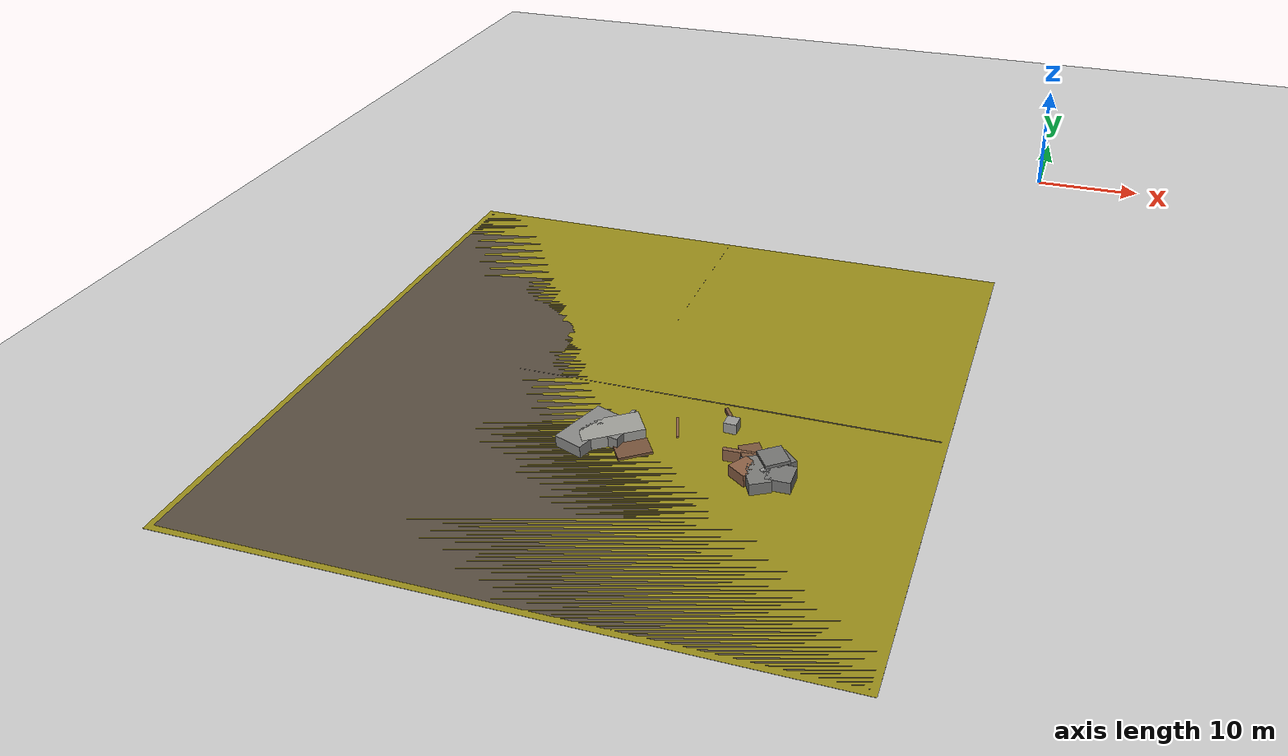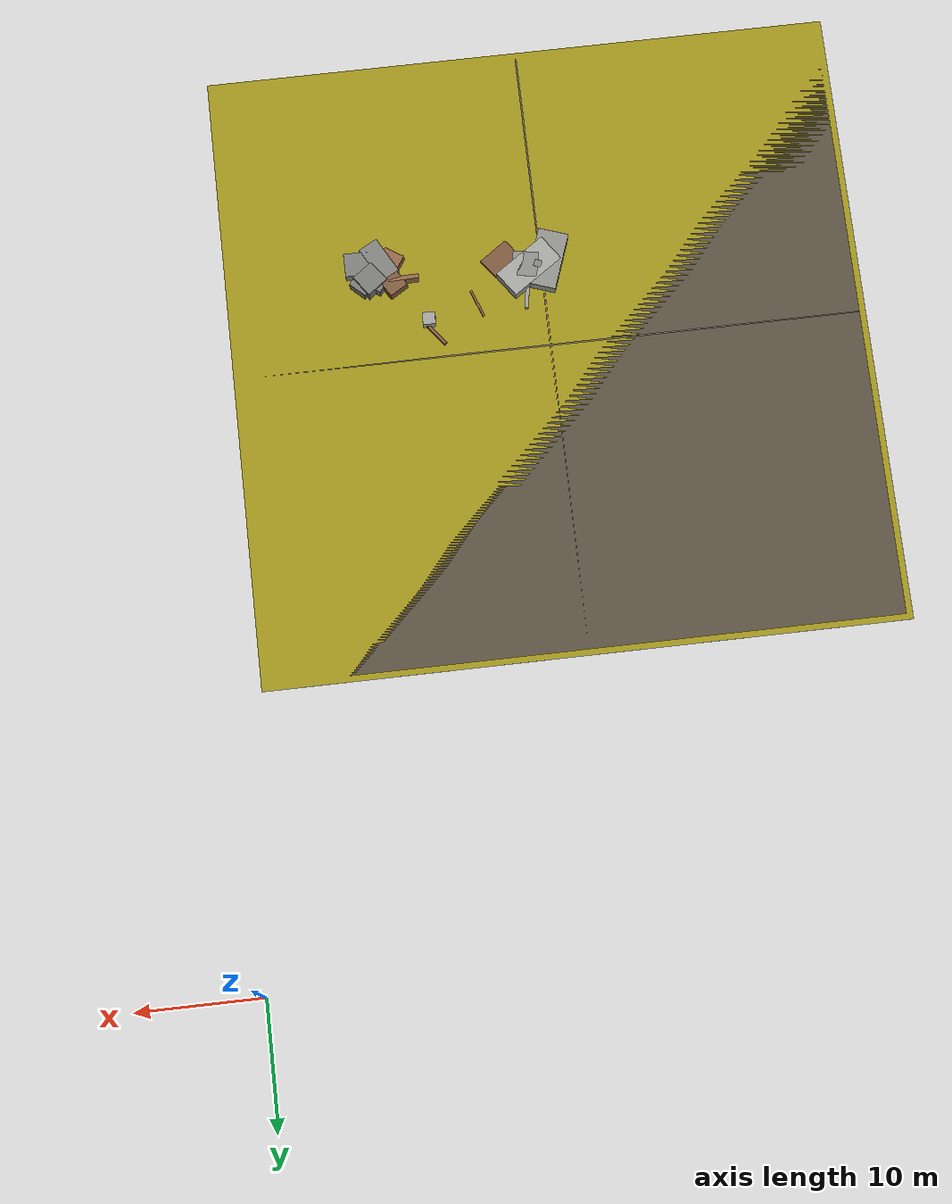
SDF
<sdf version="1.6">
 <world name="navitas_arena">
  <model name="ground_plane">
   <static>true</static>
   <link name="link">
    <collision name="collision">
     <geometry><plane><normal>0 0 1</normal><size>400 400</size></plane></geometry>
     <surface><friction><ode><mu>0.8</mu><mu2>0.8</mu2></ode></friction></surface>
    </collision>
    <visual name="visual">
     <cast_shadows>false</cast_shadows>
     <geometry><plane><normal>0 0 1</normal><size>400 400</size></plane></geometry>
     <material>
      <script><uri>file://media/materials/scripts/gazebo.material</uri><name>Gazebo/Grey</name></script>
     </material>
    </visual>
   </link>
  </model>
  <model name="gr_zor">
   <static>true</static>
   <pose>-27.200 -48.800 0.010 0 0 0.000</pose>
   <link name="link">
    <collision name="col"><geometry><box><size>51.000 51.000 0.020</size></box></geometry></collision>
    <visual name="vis">
     <geometry><box><size>51.000 51.000 0.020</size></box></geometry>
     <material><ambient>0.60 0.55 0.10 1</ambient><diffuse>0.60 0.55 0.10 1</diffuse></material>
    </visual>
   </link>
  </model>
  <model name="gd_zor">
   <static>true</static>
   <pose>-27.200 -48.800 0.010 0 0 0.000</pose>
   <link name="link">
    <collision name="col"><geometry><box><size>50.000 50.000 0.020</size></box></geometry></collision>
    <visual name="vis">
     <geometry><box><size>50.000 50.000 0.020</size></box></geometry>
     <material><ambient>0.34 0.30 0.25 1</ambient><diffuse>0.34 0.30 0.25 1</diffuse></material>
    </visual>
   </link>
  </model>
  <model name="gv_zor_0">
   <static>true</static>
   <pose>-27.200 -48.800 0.010 0 0 0.000</pose>
   <link name="link">
    <collision name="col"><geometry><box><size>0.120 50.000 0.020</size></box></geometry></collision>
    <visual name="vis">
     <geometry><box><size>0.120 50.000 0.020</size></box></geometry>
     <material><ambient>0.42 0.38 0.32 1</ambient><diffuse>0.42 0.38 0.32 1</diffuse></material>
    </visual>
   </link>
  </model>
  <model name="gh_zor_0">
   <static>true</static>
   <pose>-27.200 -48.800 0.010 0 0 0.000</pose>
   <link name="link">
    <collision name="col"><geometry><box><size>50.000 0.120 0.020</size></box></geometry></collision>
    <visual name="vis">
     <geometry><box><size>50.000 0.120 0.020</size></box></geometry>
     <material><ambient>0.42 0.38 0.32 1</ambient><diffuse>0.42 0.38 0.32 1</diffuse></material>
    </visual>
   </link>
  </model>
  <model name="blk_zor_1_3_1">
   <static>true</static>
   <pose>-27.707 -55.788 0.500 0 0 1.234</pose>
   <link name="link">
    <collision name="col"><geometry><box><size>4.750 2.446 1.000</size></box></geometry></collision>
    <visual name="vis">
     <geometry><box><size>4.750 2.446 1.000</size></box></geometry>
     <material><ambient>0.54 0.54 0.53 1</ambient><diffuse>0.54 0.54 0.53 1</diffuse></material>
    </visual>
   </link>
  </model>
  <model name="blk_zor_1_3_2">
   <static>true</static>
   <pose>-26.922 -55.457 0.500 0 0 2.713</pose>
   <link name="link">
    <collision name="col"><geometry><box><size>0.583 0.583 1.000</size></box></geometry></collision>
    <visual name="vis">
     <geometry><box><size>0.583 0.583 1.000</size></box></geometry>
     <material><ambient>0.50 0.50 0.49 1</ambient><diffuse>0.50 0.50 0.49 1</diffuse></material>
    </visual>
   </link>
  </model>
  <model name="blk_zor_1_3_3">
   <static>true</static>
   <pose>-26.173 -55.322 0.500 0 0 0.603</pose>
   <link name="link">
    <collision name="col"><geometry><box><size>4.800 2.397 1.000</size></box></geometry></collision>
    <visual name="vis">
     <geometry><box><size>4.800 2.397 1.000</size></box></geometry>
     <material><ambient>0.62 0.62 0.60 1</ambient><diffuse>0.62 0.62 0.60 1</diffuse></material>
    </visual>
   </link>
  </model>
  <model name="blk_zor_1_3_4">
   <static>true</static>
   <pose>-25.884 -55.542 0.500 0 0 1.378</pose>
   <link name="link">
    <collision name="col"><geometry><box><size>2.056 2.056 1.000</size></box></geometry></collision>
    <visual name="vis">
     <geometry><box><size>2.056 2.056 1.000</size></box></geometry>
     <material><ambient>0.53 0.53 0.52 1</ambient><diffuse>0.53 0.53 0.52 1</diffuse></material>
    </visual>
   </link>
  </model>
  <model name="blk_zor_2_2_1">
   <static>true</static>
   <pose>-15.105 -57.019 0.500 0 0 2.566</pose>
   <link name="link">
    <collision name="col"><geometry><box><size>1.691 1.691 1.000</size></box></geometry></collision>
    <visual name="vis">
     <geometry><box><size>1.691 1.691 1.000</size></box></geometry>
     <material><ambient>0.55 0.38 0.27 1</ambient><diffuse>0.55 0.38 0.27 1</diffuse></material>
    </visual>
   </link>
  </model>
  <model name="blk_zor_2_2_2">
   <static>true</static>
   <pose>-14.249 -57.161 0.500 0 0 2.070</pose>
   <link name="link">
    <collision name="col"><geometry><box><size>3.221 1.662 1.000</size></box></geometry></collision>
    <visual name="vis">
     <geometry><box><size>3.221 1.662 1.000</size></box></geometry>
     <material><ambient>0.48 0.48 0.47 1</ambient><diffuse>0.48 0.48 0.47 1</diffuse></material>
    </visual>
   </link>
  </model>
  <model name="blk_zor_2_2_3">
   <static>true</static>
   <pose>-13.593 -57.042 0.500 0 0 1.040</pose>
   <link name="link">
    <collision name="col"><geometry><box><size>0.587 0.587 1.000</size></box></geometry></collision>
    <visual name="vis">
     <geometry><box><size>0.587 0.587 1.000</size></box></geometry>
     <material><ambient>0.61 0.61 0.60 1</ambient><diffuse>0.61 0.61 0.60 1</diffuse></material>
    </visual>
   </link>
  </model>
  <model name="blk_zor_2_2_4">
   <static>true</static>
   <pose>-12.420 -57.023 0.500 0 0 1.576</pose>
   <link name="link">
    <collision name="col"><geometry><box><size>1.935 1.935 1.000</size></box></geometry></collision>
    <visual name="vis">
     <geometry><box><size>1.935 1.935 1.000</size></box></geometry>
     <material><ambient>0.47 0.47 0.46 1</ambient><diffuse>0.47 0.47 0.46 1</diffuse></material>
    </visual>
   </link>
  </model>
  <model name="blk_zor_2_3_0">
   <static>true</static>
   <pose>-16.074 -55.459 0.500 0 0 0.027</pose>
   <link name="link">
    <collision name="col"><geometry><box><size>2.413 0.351 1.000</size></box></geometry></collision>
    <visual name="vis">
     <geometry><box><size>2.413 0.351 1.000</size></box></geometry>
     <material><ambient>0.54 0.38 0.27 1</ambient><diffuse>0.54 0.38 0.27 1</diffuse></material>
    </visual>
   </link>
  </model>
  <model name="blk_zor_2_3_1">
   <static>true</static>
   <pose>-15.195 -55.159 0.500 0 0 2.124</pose>
   <link name="link">
    <collision name="col"><geometry><box><size>1.644 1.644 1.000</size></box></geometry></collision>
    <visual name="vis">
     <geometry><box><size>1.644 1.644 1.000</size></box></geometry>
     <material><ambient>0.48 0.34 0.24 1</ambient><diffuse>0.48 0.34 0.24 1</diffuse></material>
    </visual>
   </link>
  </model>
  <model name="blk_zor_2_3_2">
   <static>true</static>
   <pose>-13.982 -55.076 0.500 0 0 2.513</pose>
   <link name="link">
    <collision name="col"><geometry><box><size>0.934 0.934 1.000</size></box></geometry></collision>
    <visual name="vis">
     <geometry><box><size>0.934 0.934 1.000</size></box></geometry>
     <material><ambient>0.46 0.46 0.45 1</ambient><diffuse>0.46 0.46 0.45 1</diffuse></material>
    </visual>
   </link>
  </model>
  <model name="blk_zor_2_3_3">
   <static>true</static>
   <pose>-13.394 -55.600 0.626 0 0 2.213</pose>
   <link name="link">
    <collision name="col"><geometry><box><size>1.936 1.936 1.251</size></box></geometry></collision>
    <visual name="vis">
     <geometry><box><size>1.936 1.936 1.251</size></box></geometry>
     <material><ambient>0.46 0.46 0.45 1</ambient><diffuse>0.46 0.46 0.45 1</diffuse></material>
    </visual>
   </link>
  </model>
  <model name="blk_zor_2_3_4">
   <static>true</static>
   <pose>-12.813 -55.420 0.500 0 0 2.390</pose>
   <link name="link">
    <collision name="col"><geometry><box><size>1.597 1.597 1.000</size></box></geometry></collision>
    <visual name="vis">
     <geometry><box><size>1.597 1.597 1.000</size></box></geometry>
     <material><ambient>0.45 0.45 0.44 1</ambient><diffuse>0.45 0.45 0.44 1</diffuse></material>
    </visual>
   </link>
  </model>
  <model name="deb_zor_1">
   <static>true</static>
   <pose>-23.999 -56.456 0.118 0 0 0.616</pose>
   <link name="link">
    <collision name="col"><geometry><box><size>2.648 1.808 0.236</size></box></geometry></collision>
    <visual name="vis">
     <geometry><box><size>2.648 1.808 0.236</size></box></geometry>
     <material><ambient>0.47 0.33 0.23 1</ambient><diffuse>0.47 0.33 0.23 1</diffuse></material>
    </visual>
   </link>
  </model>
  <model name="deb_zor_57">
   <static>true</static>
   <pose>-17.735 -51.862 0.449 0 0 3.099</pose>
   <link name="link">
    <collision name="col"><geometry><box><size>1.014 1.014 0.898</size></box></geometry></collision>
    <visual name="vis">
     <geometry><box><size>1.014 1.014 0.898</size></box></geometry>
     <material><ambient>0.60 0.60 0.59 1</ambient><diffuse>0.60 0.60 0.59 1</diffuse></material>
    </visual>
   </link>
  </model>
  <model name="deb_zor_61">
   <static>true</static>
   <pose>-21.738 -52.916 0.093 0 0 1.924</pose>
   <link name="link">
    <collision name="col"><geometry><box><size>2.416 0.171 0.186</size></box></geometry></collision>
    <visual name="vis">
     <geometry><box><size>2.416 0.171 0.186</size></box></geometry>
     <material><ambient>0.55 0.38 0.27 1</ambient><diffuse>0.55 0.38 0.27 1</diffuse></material>
    </visual>
   </link>
  </model>
  <model name="deb_zor_70">
   <static>true</static>
   <pose>-25.841 -53.396 0.180 0 0 1.412</pose>
   <link name="link">
    <collision name="col"><geometry><box><size>2.769 0.297 0.360</size></box></geometry></collision>
    <visual name="vis">
     <geometry><box><size>2.769 0.297 0.360</size></box></geometry>
     <material><ambient>0.59 0.59 0.58 1</ambient><diffuse>0.59 0.59 0.58 1</diffuse></material>
    </visual>
   </link>
  </model>
  <model name="deb_zor_100">
   <static>true</static>
   <pose>-18.213 -50.637 0.195 0 0 2.209</pose>
   <link name="link">
    <collision name="col"><geometry><box><size>2.158 0.256 0.390</size></box></geometry></collision>
    <visual name="vis">
     <geometry><box><size>2.158 0.256 0.390</size></box></geometry>
     <material><ambient>0.50 0.35 0.25 1</ambient><diffuse>0.50 0.35 0.25 1</diffuse></material>
    </visual>
   </link>
  </model>
 </world>
</sdf>
